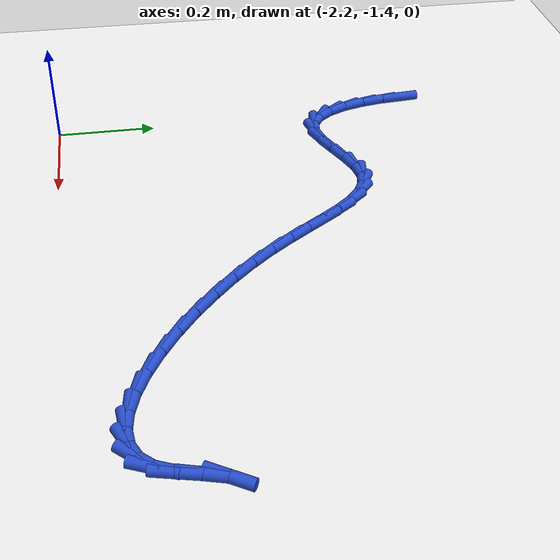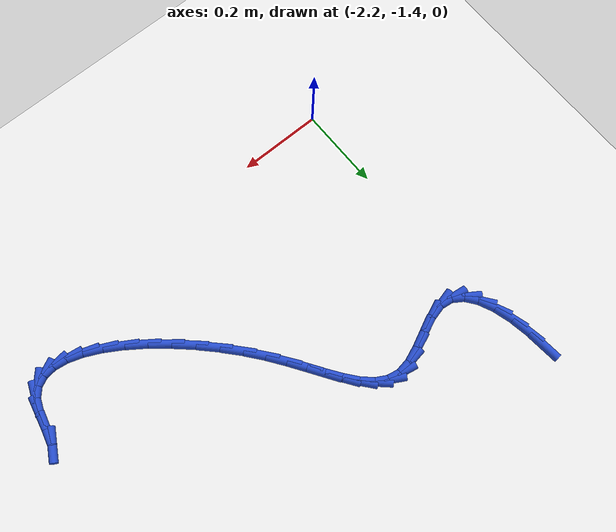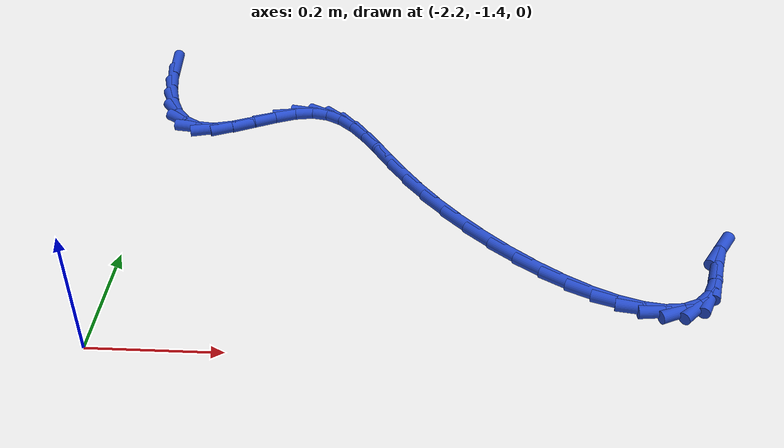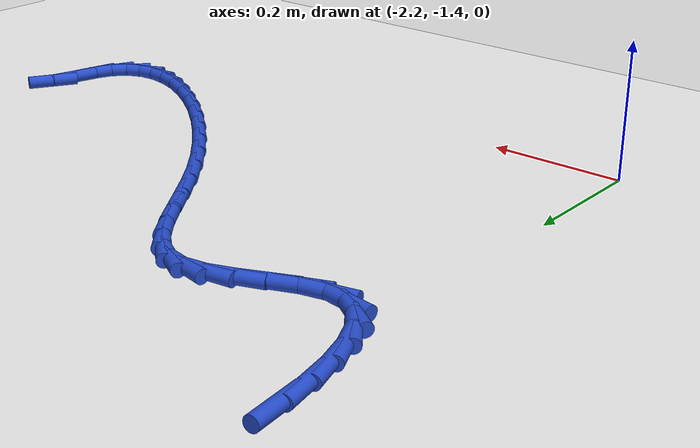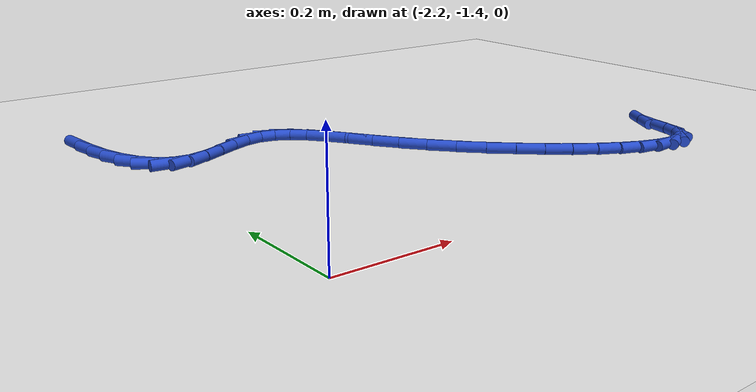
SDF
<sdf version="1.6">
 <world name="default">
  <model name="ground_plane">
   <static>1</static>
   <link name="link">
    <collision name="collision">
     <geometry><plane><normal>0 0 1</normal><size>100 100</size></plane></geometry>
     <surface><friction><ode><mu>100</mu><mu2>50</mu2></ode></friction></surface>
    </collision>
    <visual name="visual">
     <cast_shadows>0</cast_shadows>
     <geometry><plane><normal>0 0 1</normal><size>100 100</size></plane></geometry>
     <material>
      <script><uri>file://media/materials/scripts/gazebo.material</uri><name>Gazebo/WhiteGlow</name></script>
     </material>
    </visual>
   </link>
  </model>
  <model name="line">
   <link name="link_129">
    <pose>-2.237729555213816 -0.6491286732114666 0.01 0 1.57 -1.477947925039903</pose>
    <collision name="collision">
     <geometry><cylinder><radius>0.01</radius><length>0.08</length></cylinder></geometry>
    </collision>
    <visual name="visual">
     <material>
      <script><name>Gazebo/Blue</name><uri>file://media/materials/scripts/gazebo.material</uri></script>
     </material>
     <geometry><cylinder><radius>0.01</radius><length>0.08</length></cylinder></geometry>
    </visual>
   </link>
   <link name="link_130">
    <pose>-2.23332372086489 -0.6964441502710723 0.01 0 1.57 -1.3920906919755787</pose>
    <collision name="collision">
     <geometry><cylinder><radius>0.01</radius><length>0.08</length></cylinder></geometry>
    </collision>
    <visual name="visual">
     <material>
      <script><name>Gazebo/Blue</name><uri>file://media/materials/scripts/gazebo.material</uri></script>
     </material>
     <geometry><cylinder><radius>0.01</radius><length>0.08</length></cylinder></geometry>
    </visual>
   </link>
   <link name="link_131">
    <pose>-2.2251881508513165 -0.7414834688195392 0.01 0 1.57 -1.2840440024762145</pose>
    <collision name="collision">
     <geometry><cylinder><radius>0.01</radius><length>0.08</length></cylinder></geometry>
    </collision>
    <visual name="visual">
     <material>
      <script><name>Gazebo/Blue</name><uri>file://media/materials/scripts/gazebo.material</uri></script>
     </material>
     <geometry><cylinder><radius>0.01</radius><length>0.08</length></cylinder></geometry>
    </visual>
   </link>
   <link name="link_132">
    <pose>-2.213166697396438 -0.7822508362502477 0.01 0 1.57 -1.1350344824063388</pose>
    <collision name="collision">
     <geometry><cylinder><radius>0.01</radius><length>0.08</length></cylinder></geometry>
    </collision>
    <visual name="visual">
     <material>
      <script><name>Gazebo/Blue</name><uri>file://media/materials/scripts/gazebo.material</uri></script>
     </material>
     <geometry><cylinder><radius>0.01</radius><length>0.08</length></cylinder></geometry>
    </visual>
   </link>
   <link name="link_133">
    <pose>-2.1971032127235994 -0.8167504599565811 0.01 0 1.57 -0.9131864465764419</pose>
    <collision name="collision">
     <geometry><cylinder><radius>0.01</radius><length>0.08</length></cylinder></geometry>
    </collision>
    <visual name="visual">
     <material>
      <script><name>Gazebo/Blue</name><uri>file://media/materials/scripts/gazebo.material</uri></script>
     </material>
     <geometry><cylinder><radius>0.01</radius><length>0.08</length></cylinder></geometry>
    </visual>
   </link>
   <link name="link_134">
    <pose>-2.176841549056142 -0.8429865473319218 0.01 0 1.57 -0.575699942097005</pose>
    <collision name="collision">
     <geometry><cylinder><radius>0.01</radius><length>0.08</length></cylinder></geometry>
    </collision>
    <visual name="visual">
     <material>
      <script><name>Gazebo/Blue</name><uri>file://media/materials/scripts/gazebo.material</uri></script>
     </material>
     <geometry><cylinder><radius>0.01</radius><length>0.08</length></cylinder></geometry>
    </visual>
   </link>
   <link name="link_135">
    <pose>-2.152225558617409 -0.8589633057696527 0.01 0 1.57 -0.12785710036313994</pose>
    <collision name="collision">
     <geometry><cylinder><radius>0.01</radius><length>0.08</length></cylinder></geometry>
    </collision>
    <visual name="visual">
     <material>
      <script><name>Gazebo/Blue</name><uri>file://media/materials/scripts/gazebo.material</uri></script>
     </material>
     <geometry><cylinder><radius>0.01</radius><length>0.08</length></cylinder></geometry>
    </visual>
   </link>
   <link name="link_136">
    <pose>-2.1231050352565224 -0.8627069936165092 0.01 0 1.57 0.2400391277533176</pose>
    <collision name="collision">
     <geometry><cylinder><radius>0.01</radius><length>0.08</length></cylinder></geometry>
    </collision>
    <visual name="visual">
     <material>
      <script><name>Gazebo/Blue</name><uri>file://media/materials/scripts/gazebo.material</uri></script>
     </material>
     <geometry><cylinder><radius>0.01</radius><length>0.08</length></cylinder></geometry>
    </visual>
   </link>
   <link name="link_137">
    <pose>-2.0899633651826517 -0.8545952989632705 0.01 0 1.57 0.4042423483340867</pose>
    <collision name="collision">
     <geometry><cylinder><radius>0.01</radius><length>0.08</length></cylinder></geometry>
    </collision>
    <visual name="visual">
     <material>
      <script><name>Gazebo/Blue</name><uri>file://media/materials/scripts/gazebo.material</uri></script>
     </material>
     <geometry><cylinder><radius>0.01</radius><length>0.08</length></cylinder></geometry>
    </visual>
   </link>
   <link name="link_138">
    <pose>-2.0544710414920457 -0.8394115792547404 0.01 0 1.57 0.4404572750289106</pose>
    <collision name="collision">
     <geometry><cylinder><radius>0.01</radius><length>0.08</length></cylinder></geometry>
    </collision>
    <visual name="visual">
     <material>
      <script><name>Gazebo/Blue</name><uri>file://media/materials/scripts/gazebo.material</uri></script>
     </material>
     <geometry><cylinder><radius>0.01</radius><length>0.08</length></cylinder></geometry>
    </visual>
   </link>
   <link name="link_139">
    <pose>-2.018429077210448 -0.8224235861042081 0.01 0 1.57 0.3707624595574302</pose>
    <collision name="collision">
     <geometry><cylinder><radius>0.01</radius><length>0.08</length></cylinder></geometry>
    </collision>
    <visual name="visual">
     <material>
      <script><name>Gazebo/Blue</name><uri>file://media/materials/scripts/gazebo.material</uri></script>
     </material>
     <geometry><cylinder><radius>0.01</radius><length>0.08</length></cylinder></geometry>
    </visual>
   </link>
   <link name="link_140">
    <pose>-1.9836384853636047 -0.8088990711249645 0.01 0 1.57 0.15465236068767946</pose>
    <collision name="collision">
     <geometry><cylinder><radius>0.01</radius><length>0.08</length></cylinder></geometry>
    </collision>
    <visual name="visual">
     <material>
      <script><name>Gazebo/Blue</name><uri>file://media/materials/scripts/gazebo.material</uri></script>
     </material>
     <geometry><cylinder><radius>0.01</radius><length>0.08</length></cylinder></geometry>
    </visual>
   </link>
   <link name="link_141">
    <pose>-1.9518330100792924 -0.8039406856297149 0.01 0 1.57 -0.18794080579146336</pose>
    <collision name="collision">
     <geometry><cylinder><radius>0.01</radius><length>0.08</length></cylinder></geometry>
    </collision>
    <visual name="visual">
     <material>
      <script><name>Gazebo/Blue</name><uri>file://media/materials/scripts/gazebo.material</uri></script>
     </material>
     <geometry><cylinder><radius>0.01</radius><length>0.08</length></cylinder></geometry>
    </visual>
   </link>
   <link name="link_142">
    <pose>-1.9234006236472565 -0.8093481082098258 0.01 0 1.57 -0.5108252777967206</pose>
    <collision name="collision">
     <geometry><cylinder><radius>0.01</radius><length>0.08</length></cylinder></geometry>
    </collision>
    <visual name="visual">
     <material>
      <script><name>Gazebo/Blue</name><uri>file://media/materials/scripts/gazebo.material</uri></script>
     </material>
     <geometry><cylinder><radius>0.01</radius><length>0.08</length></cylinder></geometry>
    </visual>
   </link>
   <link name="link_143">
    <pose>-1.8974867367930606 -0.8238713571538689 0.01 0 1.57 -0.742012307511397</pose>
    <collision name="collision">
     <geometry><cylinder><radius>0.01</radius><length>0.08</length></cylinder></geometry>
    </collision>
    <visual name="visual">
     <material>
      <script><name>Gazebo/Blue</name><uri>file://media/materials/scripts/gazebo.material</uri></script>
     </material>
     <geometry><cylinder><radius>0.01</radius><length>0.08</length></cylinder></geometry>
    </visual>
   </link>
   <link name="link_144">
    <pose>-1.8731901746070607 -0.8461461140716724 0.01 0 1.57 -0.8823616010098223</pose>
    <collision name="collision">
     <geometry><cylinder><radius>0.01</radius><length>0.08</length></cylinder></geometry>
    </collision>
    <visual name="visual">
     <material>
      <script><name>Gazebo/Blue</name><uri>file://media/materials/scripts/gazebo.material</uri></script>
     </material>
     <geometry><cylinder><radius>0.01</radius><length>0.08</length></cylinder></geometry>
    </visual>
   </link>
   <link name="link_145">
    <pose>-1.849609762179611 -0.8748080605730642 0.01 0 1.57 -0.9563727861551617</pose>
    <collision name="collision">
     <geometry><cylinder><radius>0.01</radius><length>0.08</length></cylinder></geometry>
    </collision>
    <visual name="visual">
     <material>
      <script><name>Gazebo/Blue</name><uri>file://media/materials/scripts/gazebo.material</uri></script>
     </material>
     <geometry><cylinder><radius>0.01</radius><length>0.08</length></cylinder></geometry>
    </visual>
   </link>
   <link name="link_146">
    <pose>-1.8258443246010656 -0.9084928782678726 0.01 0 1.57 -0.9836088180875664</pose>
    <collision name="collision">
     <geometry><cylinder><radius>0.01</radius><length>0.08</length></cylinder></geometry>
    </collision>
    <visual name="visual">
     <material>
      <script><name>Gazebo/Blue</name><uri>file://media/materials/scripts/gazebo.material</uri></script>
     </material>
     <geometry><cylinder><radius>0.01</radius><length>0.08</length></cylinder></geometry>
    </visual>
   </link>
   <link name="link_147">
    <pose>-1.800992686961779 -0.9458362487659262 0.01 0 1.57 -0.9755986335339657</pose>
    <collision name="collision">
     <geometry><cylinder><radius>0.01</radius><length>0.08</length></cylinder></geometry>
    </collision>
    <visual name="visual">
     <material>
      <script><name>Gazebo/Blue</name><uri>file://media/materials/scripts/gazebo.material</uri></script>
     </material>
     <geometry><cylinder><radius>0.01</radius><length>0.08</length></cylinder></geometry>
    </visual>
   </link>
   <link name="link_148">
    <pose>-1.7741536743521047 -0.9854738536770539 0.01 0 1.57 -0.9384410217183224</pose>
    <collision name="collision">
     <geometry><cylinder><radius>0.01</radius><length>0.08</length></cylinder></geometry>
    </collision>
    <visual name="visual">
     <material>
      <script><name>Gazebo/Blue</name><uri>file://media/materials/scripts/gazebo.material</uri></script>
     </material>
     <geometry><cylinder><radius>0.01</radius><length>0.08</length></cylinder></geometry>
    </visual>
   </link>
   <link name="link_149">
    <pose>-1.7444281266119521 -1.0260421596385265 0.01 0 1.57 -0.8839688423853642</pose>
    <collision name="collision">
     <geometry><cylinder><radius>0.01</radius><length>0.08</length></cylinder></geometry>
    </collision>
    <visual name="visual">
     <material>
      <script><name>Gazebo/Blue</name><uri>file://media/materials/scripts/gazebo.material</uri></script>
     </material>
     <geometry><cylinder><radius>0.01</radius><length>0.08</length></cylinder></geometry>
    </visual>
   </link>
   <link name="link_150">
    <pose>-1.711371214262945 -1.0663546587910069 0.01 0 1.57 -0.831515214112531</pose>
    <collision name="collision">
     <geometry><cylinder><radius>0.01</radius><length>0.08</length></cylinder></geometry>
    </collision>
    <visual name="visual">
     <material>
      <script><name>Gazebo/Blue</name><uri>file://media/materials/scripts/gazebo.material</uri></script>
     </material>
     <geometry><cylinder><radius>0.01</radius><length>0.08</length></cylinder></geometry>
    </visual>
   </link>
   <link name="link_151">
    <pose>-1.6755654764125423 -1.1056251473893053 0.01 0 1.57 -0.7809696780261406</pose>
    <collision name="collision">
     <geometry><cylinder><radius>0.01</radius><length>0.08</length></cylinder></geometry>
    </collision>
    <visual name="visual">
     <material>
      <script><name>Gazebo/Blue</name><uri>file://media/materials/scripts/gazebo.material</uri></script>
     </material>
     <geometry><cylinder><radius>0.01</radius><length>0.08</length></cylinder></geometry>
    </visual>
   </link>
   <link name="link_152">
    <pose>-1.6377346097063292 -1.143122422341391 0.01 0 1.57 -0.7296121673206118</pose>
    <collision name="collision">
     <geometry><cylinder><radius>0.01</radius><length>0.08</length></cylinder></geometry>
    </collision>
    <visual name="visual">
     <material>
      <script><name>Gazebo/Blue</name><uri>file://media/materials/scripts/gazebo.material</uri></script>
     </material>
     <geometry><cylinder><radius>0.01</radius><length>0.08</length></cylinder></geometry>
    </visual>
   </link>
   <link name="link_153">
    <pose>-1.5986023107898968 -1.1781152805552308 0.01 0 1.57 -0.6745752497646447</pose>
    <collision name="collision">
     <geometry><cylinder><radius>0.01</radius><length>0.08</length></cylinder></geometry>
    </collision>
    <visual name="visual">
     <material>
      <script><name>Gazebo/Blue</name><uri>file://media/materials/scripts/gazebo.material</uri></script>
     </material>
     <geometry><cylinder><radius>0.01</radius><length>0.08</length></cylinder></geometry>
    </visual>
   </link>
   <link name="link_154">
    <pose>-1.5588922763088315 -1.209872518938795 0.01 0 1.57 -0.6123452166027726</pose>
    <collision name="collision">
     <geometry><cylinder><radius>0.01</radius><length>0.08</length></cylinder></geometry>
    </collision>
    <visual name="visual">
     <material>
      <script><name>Gazebo/Blue</name><uri>file://media/materials/scripts/gazebo.material</uri></script>
     </material>
     <geometry><cylinder><radius>0.01</radius><length>0.08</length></cylinder></geometry>
    </visual>
   </link>
   <link name="link_155">
    <pose>-1.5193282029087216 -1.2376629344000512 0.01 0 1.57 -0.5380548935745971</pose>
    <collision name="collision">
     <geometry><cylinder><radius>0.01</radius><length>0.08</length></cylinder></geometry>
    </collision>
    <visual name="visual">
     <material>
      <script><name>Gazebo/Blue</name><uri>file://media/materials/scripts/gazebo.material</uri></script>
     </material>
     <geometry><cylinder><radius>0.01</radius><length>0.08</length></cylinder></geometry>
    </visual>
   </link>
   <link name="link_156">
    <pose>-1.4806337872351547 -1.2607553238469704 0.01 0 1.57 -0.4443310639218628</pose>
    <collision name="collision">
     <geometry><cylinder><radius>0.01</radius><length>0.08</length></cylinder></geometry>
    </collision>
    <visual name="visual">
     <material>
      <script><name>Gazebo/Blue</name><uri>file://media/materials/scripts/gazebo.material</uri></script>
     </material>
     <geometry><cylinder><radius>0.01</radius><length>0.08</length></cylinder></geometry>
    </visual>
   </link>
   <link name="link_157">
    <pose>-1.44353272593372 -1.278418484187519 0.01 0 1.57 -0.31936976884645296</pose>
    <collision name="collision">
     <geometry><cylinder><radius>0.01</radius><length>0.08</length></cylinder></geometry>
    </collision>
    <visual name="visual">
     <material>
      <script><name>Gazebo/Blue</name><uri>file://media/materials/scripts/gazebo.material</uri></script>
     </material>
     <geometry><cylinder><radius>0.01</radius><length>0.08</length></cylinder></geometry>
    </visual>
   </link>
   <link name="link_158">
    <pose>-1.4087487156500047 -1.2899212123296668 0.01 0 1.57 -0.14425311073350436</pose>
    <collision name="collision">
     <geometry><cylinder><radius>0.01</radius><length>0.08</length></cylinder></geometry>
    </collision>
    <visual name="visual">
     <material>
      <script><name>Gazebo/Blue</name><uri>file://media/materials/scripts/gazebo.material</uri></script>
     </material>
     <geometry><cylinder><radius>0.01</radius><length>0.08</length></cylinder></geometry>
    </visual>
   </link>
   <link name="link_159">
    <pose>-1.377005453029597 -1.294532305181383 0.01 0 1.57 0.10723087585689034</pose>
    <collision name="collision">
     <geometry><cylinder><radius>0.01</radius><length>0.08</length></cylinder></geometry>
    </collision>
    <visual name="visual">
     <material>
      <script><name>Gazebo/Blue</name><uri>file://media/materials/scripts/gazebo.material</uri></script>
     </material>
     <geometry><cylinder><radius>0.01</radius><length>0.08</length></cylinder></geometry>
    </visual>
   </link>
   <link name="link_160">
    <pose>-1.3490266347180841 -1.291520559650636 0.01 0 1.57 0.45063822243793206</pose>
    <collision name="collision">
     <geometry><cylinder><radius>0.01</radius><length>0.08</length></cylinder></geometry>
    </collision>
    <visual name="visual">
     <material>
      <script><name>Gazebo/Blue</name><uri>file://media/materials/scripts/gazebo.material</uri></script>
     </material>
     <geometry><cylinder><radius>0.01</radius><length>0.08</length></cylinder></geometry>
    </visual>
   </link>
   <link name="link_161">
    <pose>-1.3255359573610555 -1.2801547726453946 0.01 0 1.57 0.8414251629720327</pose>
    <collision name="collision">
     <geometry><cylinder><radius>0.01</radius><length>0.08</length></cylinder></geometry>
    </collision>
    <visual name="visual">
     <material>
      <script><name>Gazebo/Blue</name><uri>file://media/materials/scripts/gazebo.material</uri></script>
     </material>
     <geometry><cylinder><radius>0.01</radius><length>0.08</length></cylinder></geometry>
    </visual>
   </link>
   <link name="link_162">
    <pose>-1.3072571176040986 -1.2597037410736278 0.01 0 1.57 1.1807826968395563</pose>
    <collision name="collision">
     <geometry><cylinder><radius>0.01</radius><length>0.08</length></cylinder></geometry>
    </collision>
    <visual name="visual">
     <material>
      <script><name>Gazebo/Blue</name><uri>file://media/materials/scripts/gazebo.material</uri></script>
     </material>
     <geometry><cylinder><radius>0.01</radius><length>0.08</length></cylinder></geometry>
    </visual>
   </link>
   <link name="link_163">
    <pose>-1.2948513604701708 -1.2295246194250937 0.01 0 1.57 1.3478455168959933</pose>
    <collision name="collision">
     <geometry><cylinder><radius>0.01</radius><length>0.08</length></cylinder></geometry>
    </collision>
    <visual name="visual">
     <material>
      <script><name>Gazebo/Blue</name><uri>file://media/materials/scripts/gazebo.material</uri></script>
     </material>
     <geometry><cylinder><radius>0.01</radius><length>0.08</length></cylinder></geometry>
    </visual>
   </link>
   <link name="link_164">
    <pose>-1.2864646703491096 -1.192533194259486 0.01 0 1.57 1.3130519032066312</pose>
    <collision name="collision">
     <geometry><cylinder><radius>0.01</radius><length>0.08</length></cylinder></geometry>
    </collision>
    <visual name="visual">
     <material>
      <script><name>Gazebo/Blue</name><uri>file://media/materials/scripts/gazebo.material</uri></script>
     </material>
     <geometry><cylinder><radius>0.01</radius><length>0.08</length></cylinder></geometry>
    </visual>
   </link>
   <link name="link_165">
    <pose>-1.2769241057686718 -1.156340922976739 0.01 0 1.57 1.048704362999769</pose>
    <collision name="collision">
     <geometry><cylinder><radius>0.01</radius><length>0.08</length></cylinder></geometry>
    </collision>
    <visual name="visual">
     <material>
      <script><name>Gazebo/Blue</name><uri>file://media/materials/scripts/gazebo.material</uri></script>
     </material>
     <geometry><cylinder><radius>0.01</radius><length>0.08</length></cylinder></geometry>
    </visual>
   </link>
  </model>
 </world>
</sdf>
